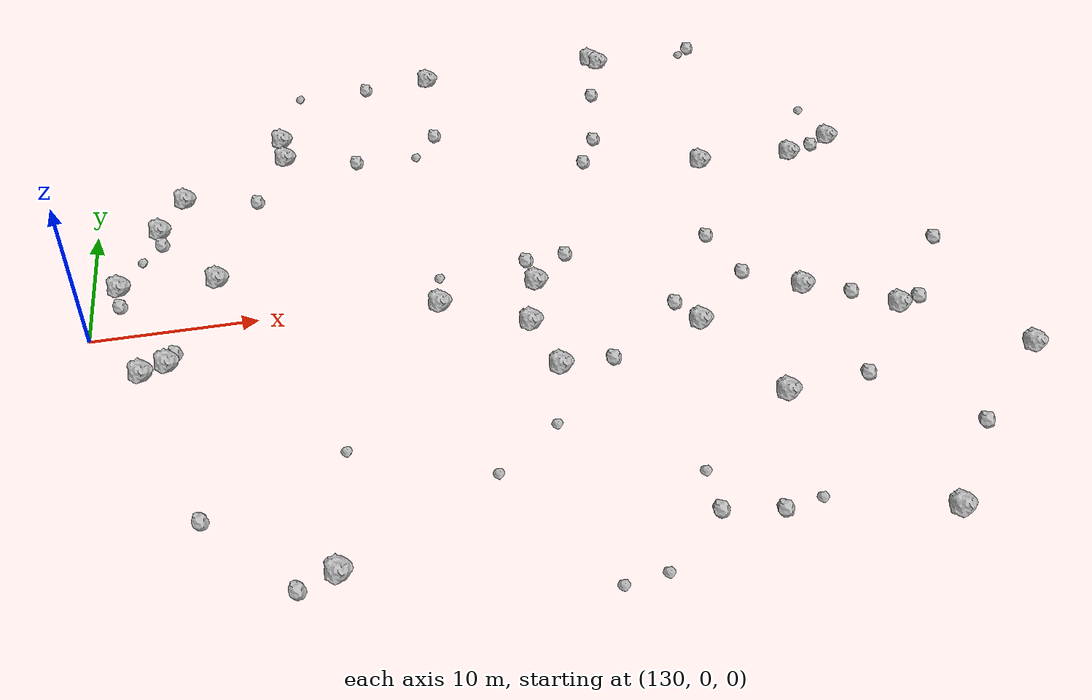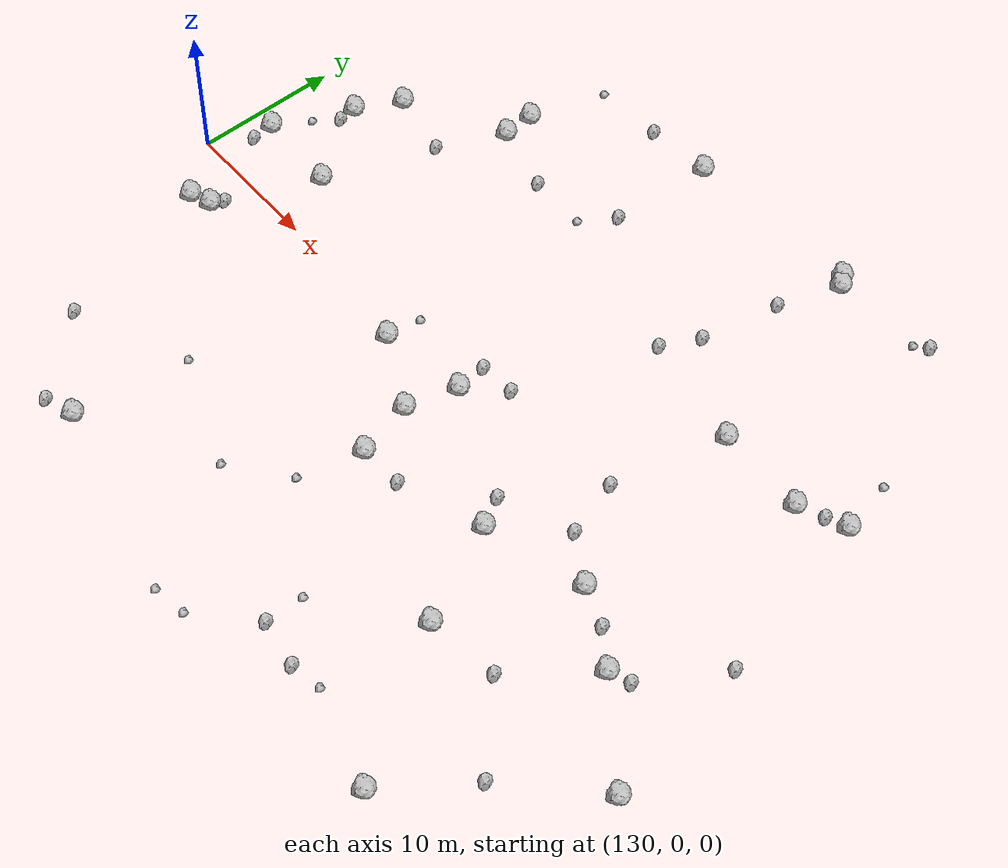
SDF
<sdf version="1.6">
 <world name="default">
  <include><uri>model://sun</uri></include>
  <model name="rock1_4_2">
   <include><uri>model://rock1</uri><pose>133.1798849046479 -3.6449284830788784 0.5 0 0 0</pose></include>
  </model>
  <model name="rock1_4_3">
   <include><uri>model://rock1</uri><pose>153.33908492787077 24.33479962364516 0.5 0 0 0</pose></include>
  </model>
  <model name="rock1_4_4">
   <include><uri>model://rock1</uri><pose>170.71129348847742 10.444875814744705 0.5 0 0 0</pose></include>
  </model>
  <model name="rock1_4_5">
   <include><uri>model://rock1</uri><pose>185.1485997592257 -11.116103208439277 0.5 0 0 0</pose></include>
  </model>
  <model name="rock1_4_6">
   <include><uri>model://rock1</uri><pose>133.98001587778992 9.54425398393115 0.5 0 0 0</pose></include>
  </model>
  <model name="rock1_4_7">
   <include><uri>model://rock1</uri><pose>157.1361436836641 0.003828110035975385 0.5 0 0 0</pose></include>
  </model>
  <model name="rock1_4_8">
   <include><uri>model://rock1</uri><pose>166.50857847769112 24.40895471640939 0.5 0 0 0</pose></include>
  </model>
  <model name="rock1_4_9">
   <include><uri>model://rock1</uri><pose>131.60498940837164 4.248841295028242 0.5 0 0 0</pose></include>
  </model>
  <model name="rock1_4_10">
   <include><uri>model://rock1</uri><pose>142.37339317495108 16.178938992351895 0.5 0 0 0</pose></include>
  </model>
  <model name="rock1_4_11">
   <include><uri>model://rock1</uri><pose>143.36089185112226 -19.910751617116038 0.5 0 0 0</pose></include>
  </model>
  <model name="rock1_4_12">
   <include><uri>model://rock1</uri><pose>137.59548534995218 3.979906578747304 0.5 0 0 0</pose></include>
  </model>
  <model name="rock1_4_13">
   <include><uri>model://rock1</uri><pose>142.2315694721012 18.407963485132903 0.5 0 0 0</pose></include>
  </model>
  <model name="rock1_4_14">
   <include><uri>model://rock1</uri><pose>150.9759702088221 -0.9015158536697143 0.5 0 0 0</pose></include>
  </model>
  <model name="rock1_4_15">
   <include><uri>model://rock1</uri><pose>156.16331991715802 -3.5777344657616226 0.5 0 0 0</pose></include>
  </model>
  <model name="rock1_4_16">
   <include><uri>model://rock1</uri><pose>134.6510398649278 -3.098797958081036 0.5 0 0 0</pose></include>
  </model>
  <model name="rock1_4_17">
   <include><uri>model://rock1</uri><pose>169.51951738470217 -12.147434463310695 0.5 0 0 0</pose></include>
  </model>
  <model name="rock1_4_18">
   <include><uri>model://rock1</uri><pose>157.20905716262615 -7.568862117616369 0.5 0 0 0</pose></include>
  </model>
  <model name="rock1_4_19">
   <include><uri>model://rock1</uri><pose>135.5543213169441 12.586044031795318 0.5 0 0 0</pose></include>
  </model>
  <model name="rock1_4_20">
   <include><uri>model://rock1</uri><pose>177.11278573835125 10.211032033815208 0.5 0 0 0</pose></include>
  </model>
  <model name="rock1_4_21">
   <include><uri>model://rock1</uri><pose>175.71740469068635 -21.918335928144067 0.5 0 0 0</pose></include>
  </model>
  <model name="rock1_4_22">
   <include><uri>model://rock1</uri><pose>178.62053116816082 -6.289231083969959 0.5 0 0 0</pose></include>
  </model>
  <model name="rock1_4_23">
   <include><uri>model://rock1</uri><pose>165.99785981146786 25.02435370129112 0.5 0 0 0</pose></include>
  </model>
  <model name="rock1_4_24">
   <include><uri>model://rock1</uri><pose>166.2588295671342 -5.4293270368988225 0.5 0 0 0</pose></include>
  </model>
  <model name="rock1_4_25">
   <include><uri>model://rock1</uri><pose>173.3752157292414 -3.489985609723586 0.5 0 0 0</pose></include>
  </model>
  <model name="rock1_4_26">
   <include><uri>model://rock1</uri><pose>180.3850095500498 11.57663421921935 0.5 0 0 0</pose></include>
  </model>
  <model name="rock2_4_0">
   <include><uri>model://rock2</uri><pose>165.0689301833383 20.121299199557697 0.3 0 0 0</pose></include>
  </model>
  <model name="rock2_4_1">
   <include><uri>model://rock2</uri><pose>141.26779845847037 -20.576241097345232 0.3 0 0 0</pose></include>
  </model>
  <model name="rock2_4_2">
   <include><uri>model://rock2</uri><pose>159.43028539130637 2.3875142217911005 0.3 0 0 0</pose></include>
  </model>
  <model name="rock2_4_3">
   <include><uri>model://rock2</uri><pose>131.74379855837458 2.632674150478465 0.3 0 0 0</pose></include>
  </model>
  <model name="rock2_4_4">
   <include><uri>model://rock2</uri><pose>135.08641087602194 -2.2241561972883446 0.3 0 0 0</pose></include>
  </model>
  <model name="rock2_4_5">
   <include><uri>model://rock2</uri><pose>163.27753209187858 -19.629195797437426 0.3 0 0 0</pose></include>
  </model>
  <model name="rock2_4_6">
   <include><uri>model://rock2</uri><pose>179.65926124416902 -16.322680840012843 0.3 0 0 0</pose></include>
  </model>
  <model name="rock2_4_7">
   <include><uri>model://rock2</uri><pose>136.55850045971567 -15.273014882074023 0.3 0 0 0</pose></include>
  </model>
  <model name="rock2_4_8">
   <include><uri>model://rock2</uri><pose>147.21622117880855 14.896086812042618 0.3 0 0 0</pose></include>
  </model>
  <model name="rock2_4_9">
   <include><uri>model://rock2</uri><pose>178.94032722336516 11.005587527739337 0.3 0 0 0</pose></include>
  </model>
  <model name="rock2_4_10">
   <include><uri>model://rock2</uri><pose>173.81280833174486 25.231384697170455 0.3 0 0 0</pose></include>
  </model>
  <model name="rock2_4_11">
   <include><uri>model://rock2</uri><pose>156.87713185590445 2.223883650059122 0.3 0 0 0</pose></include>
  </model>
  <model name="rock2_4_12">
   <include><uri>model://rock2</uri><pose>163.96550302201135 14.559261993205062 0.3 0 0 0</pose></include>
  </model>
  <model name="rock2_4_13">
   <include><uri>model://rock2</uri><pose>180.08997863162668 -5.717425421601384 0.3 0 0 0</pose></include>
  </model>
  <model name="rock2_4_14">
   <include><uri>model://rock2</uri><pose>162.68744456006323 11.965938544747267 0.3 0 0 0</pose></include>
  </model>
  <model name="rock2_4_15">
   <include><uri>model://rock2</uri><pose>168.80696612613684 2.5122082784089628 0.3 0 0 0</pose></include>
  </model>
  <model name="rock2_4_16">
   <include><uri>model://rock2</uri><pose>183.28522153429608 -0.4435973486976188 0.3 0 0 0</pose></include>
  </model>
  <model name="rock2_4_17">
   <include><uri>model://rock2</uri><pose>160.35363869801458 -7.450638472703492 0.3 0 0 0</pose></include>
  </model>
  <model name="rock2_4_18">
   <include><uri>model://rock2</uri><pose>140.30878270253643 11.65863614330739 0.3 0 0 0</pose></include>
  </model>
  <model name="rock2_4_19">
   <include><uri>model://rock2</uri><pose>134.14175335094015 8.240823696829608 0.3 0 0 0</pose></include>
  </model>
  <model name="rock2_4_20">
   <include><uri>model://rock2</uri><pose>174.5772718380412 -11.498146006925417 0.3 0 0 0</pose></include>
  </model>
  <model name="rock2_4_21">
   <include><uri>model://rock2</uri><pose>166.59891261008858 -20.212105518547 0.3 0 0 0</pose></include>
  </model>
  <model name="rock2_4_22">
   <include><uri>model://rock2</uri><pose>165.12475533047075 -3.431017201416207 0.3 0 0 0</pose></include>
  </model>
  <model name="rock2_4_23">
   <include><uri>model://rock2</uri><pose>176.14235465777287 -4.523403299638552 0.3 0 0 0</pose></include>
  </model>
  <model name="rock2_4_24">
   <include><uri>model://rock2</uri><pose>170.03747938287688 -1.4240600023617027 0.3 0 0 0</pose></include>
  </model>
  <model name="rock2_4_25">
   <include><uri>model://rock2</uri><pose>148.68125147413505 24.010962819491645 0.3 0 0 0</pose></include>
  </model>
  <model name="rock2_4_26">
   <include><uri>model://rock2</uri><pose>152.9146525334784 17.102808544755106 0.3 0 0 0</pose></include>
  </model>
  <model name="rock3_4_0">
   <include><uri>model://rock3</uri><pose>157.17226203369162 -23.343513479163104 0.2 0 0 0</pose></include>
  </model>
  <model name="rock3_4_1">
   <include><uri>model://rock3</uri><pose>179.55195993759327 15.342294545358278 0.2 0 0 0</pose></include>
  </model>
  <model name="rock3_4_2">
   <include><uri>model://rock3</uri><pose>168.79875263871483 -19.856356936251984 0.2 0 0 0</pose></include>
  </model>
  <model name="rock3_4_3">
   <include><uri>model://rock3</uri><pose>163.24695025786332 -16.9078874165562 0.2 0 0 0</pose></include>
  </model>
  <model name="rock3_4_4">
   <include><uri>model://rock3</uri><pose>156.0657154199488 -12.020137569811371 0.2 0 0 0</pose></include>
  </model>
  <model name="rock3_4_5">
   <include><uri>model://rock3</uri><pose>143.77571588325665 23.751834373286805 0.2 0 0 0</pose></include>
  </model>
  <model name="rock3_4_6">
   <include><uri>model://rock3</uri><pose>172.93415133138524 24.532312905723415 0.2 0 0 0</pose></include>
  </model>
  <model name="rock3_4_7">
   <include><uri>model://rock3</uri><pose>159.58329073712127 -23.013092712929257 0.2 0 0 0</pose></include>
  </model>
  <model name="rock3_4_8">
   <include><uri>model://rock3</uri><pose>152.26920371025486 -14.99306939554765 0.2 0 0 0</pose></include>
  </model>
  <model name="rock3_4_9">
   <include><uri>model://rock3</uri><pose>151.3339338252739 14.786178998672561 0.2 0 0 0</pose></include>
  </model>
  <model name="rock3_4_10">
   <include><uri>model://rock3</uri><pose>144.3789388800794 -11.851334962691237 0.2 0 0 0</pose></include>
  </model>
  <model name="rock3_4_11">
   <include><uri>model://rock3</uri><pose>132.93206655639892 6.671222194205868 0.2 0 0 0</pose></include>
  </model>
  <model name="rock3_4_12">
   <include><uri>model://rock3</uri><pose>151.24583270501964 1.5612956364358404 0.2 0 0 0</pose></include>
  </model>
 </world>
</sdf>
